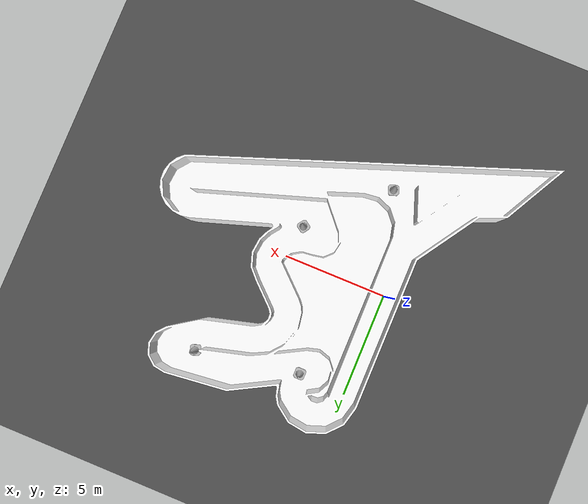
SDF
<sdf version="1.7">
 <world name="default">
  <plugin filename="libignition-gazebo-physics-system.so" name="ignition::gazebo::systems::Physics"/>
  <plugin filename="libignition-gazebo-user-commands-system.so" name="ignition::gazebo::systems::UserCommands"/>
  <plugin filename="libignition-gazebo-scene-broadcaster-system.so" name="ignition::gazebo::systems::SceneBroadcaster"/>
  <plugin filename="libignition-gazebo-sensors-system.so" name="ignition::gazebo::systems::Sensors"/>
  <plugin filename="libignition-gazebo-imu-system.so" name="ignition::gazebo::systems::Imu"/>
  <light name="sun" type="directional">
   <pose>0 0 10 0 -0 0</pose>
   <diffuse>0.8 0.8 0.8 1</diffuse>
   <specular>0.2 0.2 0.2 1</specular>
   <attenuation>
    <range>1000</range>
    <constant>0.9</constant>
    <linear>0.01</linear>
    <quadratic>0.001</quadratic>
   </attenuation>
   <direction>-0.5 0.1 -0.9</direction>
   <spot><inner_angle>0</inner_angle><outer_angle>0</outer_angle><falloff>0</falloff></spot>
  </light>
  <model name="ground_plane">
   <static>1</static>
   <link name="link">
    <collision name="collision">
     <geometry><plane><normal>0 0 1</normal><size>100 100</size></plane></geometry>
     <surface><friction><ode><mu>100</mu><mu2>50</mu2></ode></friction></surface>
    </collision>
    <visual name="visual">
     <cast_shadows>0</cast_shadows>
     <geometry><plane><normal>0 0 1</normal><size>100 100</size></plane></geometry>
     <material>
      <ambient>0.3 0.3 0.3 1</ambient>
      <diffuse>0.3 0.3 0.3 1</diffuse>
      <specular>0.02 0.02 0.02 1</specular>
     </material>
    </visual>
   </link>
  </model>
  <gravity>0 0 -9.8</gravity>
  <magnetic_field>6e-06 2.3e-05 -4.2e-05</magnetic_field>
  <atmosphere type="adiabatic"/>
  <physics name="default_physics" default="0" type="ode">
   <max_step_size>0.001</max_step_size>
   <real_time_factor>1</real_time_factor>
   <real_time_update_rate>1000</real_time_update_rate>
  </physics>
  <scene><ambient>0.4 0.4 0.4 1</ambient><background>0.7 0.7 0.7 1</background><shadows>1</shadows></scene>
  <spherical_coordinates>
   <surface_model>EARTH_WGS84</surface_model>
   <latitude_deg>0</latitude_deg>
   <longitude_deg>0</longitude_deg>
   <elevation>0</elevation>
   <heading_deg>0</heading_deg>
  </spherical_coordinates>
  <model name="raicom_1">
   <static>1</static>
   <link name="link_0">
    <inertial>
     <mass>14500.8</mass>
     <inertia>
      <ixx>2.153e+07</ixx>
      <ixy>554.673</ixy>
      <ixz>1.14343</ixz>
      <iyy>1.72e+07</iyy>
      <iyz>6.49998</iyz>
      <izz>3.82e+07</izz>
     </inertia>
    </inertial>
    <visual name="visual">
     <geometry><mesh><uri>raicom/meshes/base_link.dae</uri><scale>1 1 1</scale></mesh></geometry>
     <material>
      <diffuse>1.0 1.0 1.0</diffuse>
      <specular>0.1 0.1 0.1 1.0</specular>
      <pbr>
       <metal>
        <albedo_map>raicom/meshes/ground.png</albedo_map>
        <metalness>0.0</metalness>
        <roughness>1.0</roughness>
       </metal>
      </pbr>
     </material>
    </visual>
    <collision name="collision">
     <geometry><mesh><uri>raicom/meshes/base_link.dae</uri><scale>1 1 1</scale></mesh></geometry>
     <surface>
      <friction>
       <ode><mu>1</mu><mu2>1</mu2><fdir1>0 0 0</fdir1><slip1>0</slip1><slip2>0</slip2></ode>
       <torsional>
        <coefficient>1</coefficient>
        <patch_radius>0</patch_radius>
        <surface_radius>0</surface_radius>
        <use_patch_radius>1</use_patch_radius>
        <ode><slip>0</slip></ode>
       </torsional>
      </friction>
      <bounce><restitution_coefficient>0</restitution_coefficient><threshold>1e+06</threshold></bounce>
      <contact>
       <collide_without_contact>0</collide_without_contact>
       <collide_without_contact_bitmask>1</collide_without_contact_bitmask>
       <collide_bitmask>1</collide_bitmask>
       <ode>
        <soft_cfm>0</soft_cfm>
        <soft_erp>0.2</soft_erp>
        <kp>1e+13</kp>
        <kd>1</kd>
        <max_vel>0.01</max_vel>
        <min_depth>0</min_depth>
       </ode>
       <bullet>
        <split_impulse>1</split_impulse>
        <split_impulse_penetration_threshold>-0.01</split_impulse_penetration_threshold>
        <soft_cfm>0</soft_cfm>
        <soft_erp>0.2</soft_erp>
        <kp>1e+13</kp>
        <kd>1</kd>
       </bullet>
      </contact>
     </surface>
    </collision>
   </link>
   <static>0</static>
  </model>
  <model name="Construction Cone_3">
   <static>1</static>
   <link name="link">
    <collision name="collision">
     <geometry>
      <mesh><scale>10 10 10</scale><uri>model://construction_cone/meshes/construction_cone.dae</uri></mesh>
     </geometry>
    </collision>
    <visual name="visual">
     <geometry>
      <mesh><scale>10 10 10</scale><uri>model://construction_cone/meshes/construction_cone.dae</uri></mesh>
     </geometry>
    </visual>
    <inertial>
     <inertia><ixx>1</ixx><ixy>0</ixy><ixz>0</ixz><iyy>1</iyy><iyz>0</iyz><izz>1</izz></inertia>
     <mass>1</mass>
    </inertial>
   </link>
   <pose>2.28267 4.74028 0.818 0 -0 0</pose>
  </model>
  <model name="Construction Cone_4">
   <static>1</static>
   <link name="link">
    <collision name="collision">
     <geometry>
      <mesh><scale>10 10 10</scale><uri>model://construction_cone/meshes/construction_cone.dae</uri></mesh>
     </geometry>
    </collision>
    <visual name="visual">
     <geometry>
      <mesh><scale>10 10 10</scale><uri>model://construction_cone/meshes/construction_cone.dae</uri></mesh>
     </geometry>
    </visual>
    <inertial>
     <inertia><ixx>1</ixx><ixy>0</ixy><ixz>0</ixz><iyy>1</iyy><iyz>0</iyz><izz>1</izz></inertia>
     <mass>1</mass>
    </inertial>
   </link>
   <pose>1.50554 -4.71437 0.818 1e-06 -0 -1.2153</pose>
  </model>
  <model name="Construction Cone_2">
   <static>1</static>
   <link name="link">
    <collision name="collision">
     <geometry>
      <mesh><scale>10 10 10</scale><uri>model://construction_cone/meshes/construction_cone.dae</uri></mesh>
     </geometry>
    </collision>
    <visual name="visual">
     <geometry>
      <mesh><scale>10 10 10</scale><uri>model://construction_cone/meshes/construction_cone.dae</uri></mesh>
     </geometry>
    </visual>
    <inertial>
     <inertia><ixx>1</ixx><ixy>0</ixy><ixz>0</ixz><iyy>1</iyy><iyz>0</iyz><izz>1</izz></inertia>
     <mass>1</mass>
    </inertial>
   </link>
   <pose>7.11161 5.57155 0.818001 -2e-06 -0 -1.2409</pose>
  </model>
  <model name="Construction Cone_1">
   <static>1</static>
   <link name="link">
    <collision name="collision">
     <geometry>
      <mesh><scale>10 10 10</scale><uri>model://construction_cone/meshes/construction_cone.dae</uri></mesh>
     </geometry>
    </collision>
    <visual name="visual">
     <geometry>
      <mesh><scale>10 10 10</scale><uri>model://construction_cone/meshes/construction_cone.dae</uri></mesh>
     </geometry>
    </visual>
    <inertial>
     <inertia><ixx>1</ixx><ixy>0</ixy><ixz>0</ixz><iyy>1</iyy><iyz>0</iyz><izz>1</izz></inertia>
     <mass>1</mass>
    </inertial>
   </link>
   <pose>4.71283 -1.5644 0.818 -0 1e-06 -0.599498</pose>
  </model>
 </world>
</sdf>
